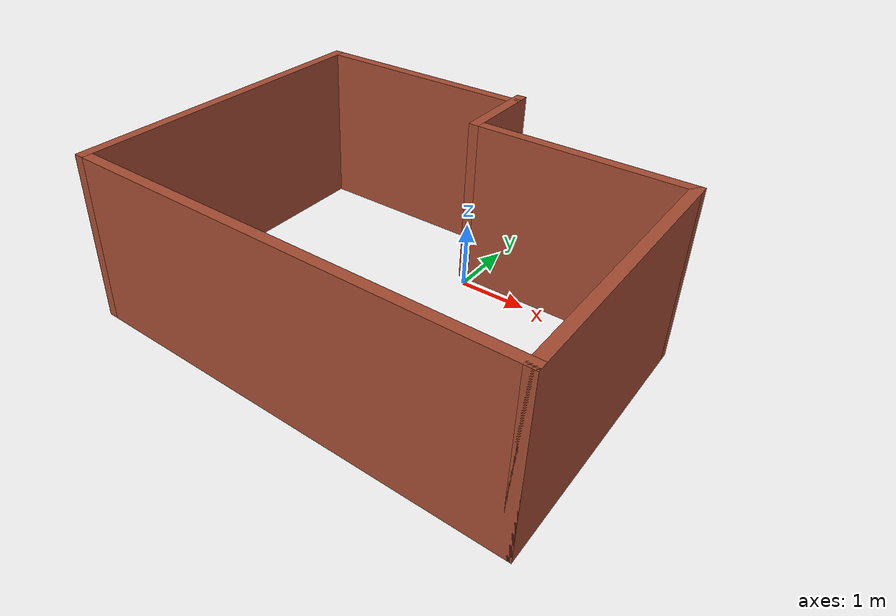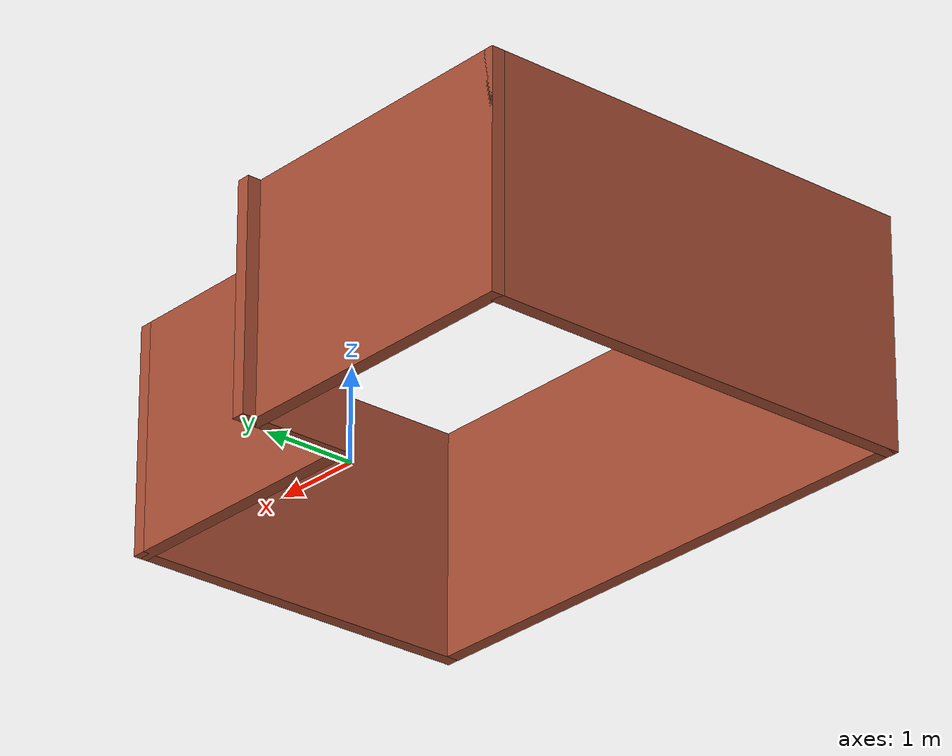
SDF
<?xml version='1.0'?>
<sdf version='1.6'>
  <model name='kitchen_living_room_walls'>
    <pose frame=''>-0.260903 -1.23577 0 0 -0 0</pose>
    <link name='Wall_14'>
      <collision name='Wall_14_Collision'>
        <geometry>
          <box>
            <size>5 0.15 2.5</size>
          </box>
        </geometry>
        <pose frame=''>0 0 1.25 0 -0 0</pose>
      </collision>
      <visual name='Wall_14_Visual'>
        <pose frame=''>0 0 1.25 0 -0 0</pose>
        <geometry>
          <box>
            <size>5 0.15 2.5</size>
          </box>
        </geometry>
        <material>
          <script>
            <uri>file://media/materials/scripts/gazebo.material</uri>
            <name>Gazebo/Bricks</name>
          </script>
          <ambient>1 1 1 1</ambient>
        </material>
        <meta>
          <layer>0</layer>
        </meta>
      </visual>
      <pose frame=''>-3.175 0 0 0 -0 -1.5708</pose>
    </link>
    <link name='Wall_15'>
      <collision name='Wall_15_Collision'>
        <geometry>
          <box>
            <size>6.5 0.15 2.5</size>
          </box>
        </geometry>
        <pose frame=''>0 0 1.25 0 -0 0</pose>
      </collision>
      <visual name='Wall_15_Visual'>
        <pose frame=''>0 0 1.25 0 -0 0</pose>
        <geometry>
          <box>
            <size>6.5 0.15 2.5</size>
          </box>
        </geometry>
        <material>
          <script>
            <uri>file://media/materials/scripts/gazebo.material</uri>
            <name>Gazebo/Bricks</name>
          </script>
          <ambient>1 1 1 1</ambient>
        </material>
        <meta>
          <layer>0</layer>
        </meta>
      </visual>
      <pose frame=''>0 -2.425 0 0 -0 0</pose>
    </link>
    <link name='Wall_16'>
      <collision name='Wall_16_Collision'>
        <geometry>
          <box>
            <size>4 0.15 2.5</size>
          </box>
        </geometry>
        <pose frame=''>0 0 1.25 0 -0 0</pose>
      </collision>
      <visual name='Wall_16_Visual'>
        <pose frame=''>0 0 1.25 0 -0 0</pose>
        <geometry>
          <box>
            <size>4 0.15 2.5</size>
          </box>
        </geometry>
        <material>
          <script>
            <uri>file://media/materials/scripts/gazebo.material</uri>
            <name>Gazebo/Bricks</name>
          </script>
          <ambient>1 1 1 1</ambient>
        </material>
        <meta>
          <layer>0</layer>
        </meta>
      </visual>
      <pose frame=''>3.175 -0.5 0 0 -0 1.5708</pose>
    </link>
    <link name='Wall_17'>
      <collision name='Wall_17_Collision'>
        <geometry>
          <box>
            <size>3 0.15 2.5</size>
          </box>
        </geometry>
        <pose frame=''>0 0 1.25 0 -0 0</pose>
      </collision>
      <visual name='Wall_17_Visual'>
        <pose frame=''>0 0 1.25 0 -0 0</pose>
        <geometry>
          <box>
            <size>3 0.15 2.5</size>
          </box>
        </geometry>
        <material>
          <script>
            <uri>file://media/materials/scripts/gazebo.material</uri>
            <name>Gazebo/Bricks</name>
          </script>
          <ambient>1 1 1 1</ambient>
        </material>
        <meta>
          <layer>0</layer>
        </meta>
      </visual>
      <pose frame=''>1.75 1.425 0 0 -0 3.14159</pose>
    </link>
    <link name='Wall_19'>
      <collision name='Wall_19_Collision'>
        <geometry>
          <box>
            <size>3.5 0.15 2.5</size>
          </box>
        </geometry>
        <pose frame=''>0 0 1.25 0 -0 0</pose>
      </collision>
      <visual name='Wall_19_Visual'>
        <pose frame=''>0 0 1.25 0 -0 0</pose>
        <geometry>
          <box>
            <size>3.5 0.15 2.5</size>
          </box>
        </geometry>
        <material>
          <script>
            <uri>file://media/materials/scripts/gazebo.material</uri>
            <name>Gazebo/Bricks</name>
          </script>
          <ambient>1 1 1 1</ambient>
        </material>
        <meta>
          <layer>0</layer>
        </meta>
      </visual>
      <pose frame=''>-1.5 2.425 0 0 -0 0</pose>
    </link>
    <link name='Wall_20'>
      <collision name='Wall_20_Collision'>
        <geometry>
          <box>
            <size>1.3 0.15 2.5</size>
          </box>
        </geometry>
        <pose frame=''>0 0 1.25 0 -0 0</pose>
      </collision>
      <visual name='Wall_20_Visual'>
        <pose frame=''>0 0 1.25 0 -0 0</pose>
        <geometry>
          <box>
            <size>1.3 0.15 2.5</size>
          </box>
        </geometry>
        <material>
          <script>
            <uri>file://media/materials/scripts/gazebo.material</uri>
            <name>Gazebo/Bricks</name>
          </script>
          <ambient>1 1 1 1</ambient>
        </material>
        <meta>
          <layer>0</layer>
        </meta>
      </visual>
      <pose frame=''>0.175 2 0 0 -0 -1.5708</pose>
    </link>
    <static>1</static>
  </model>
</sdf>
